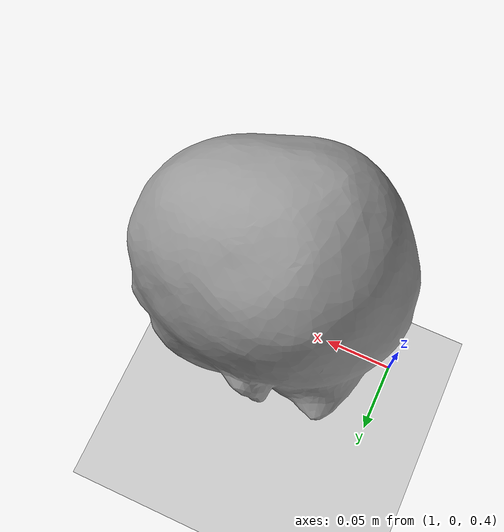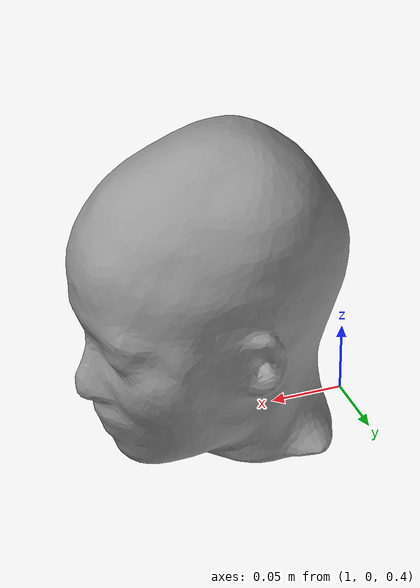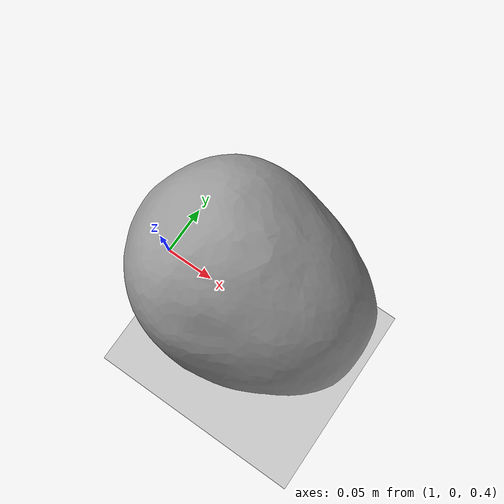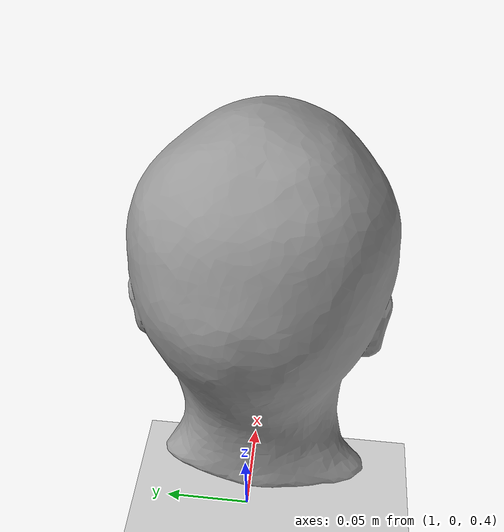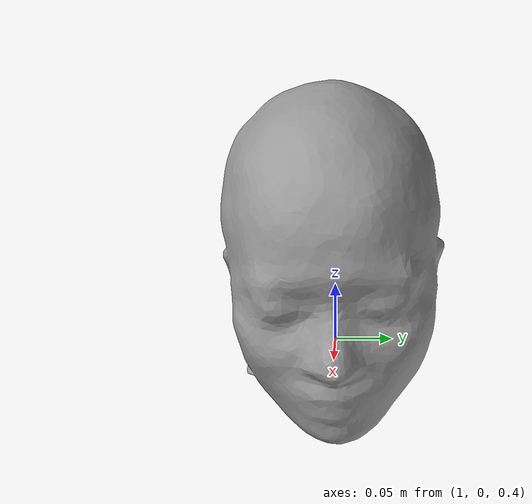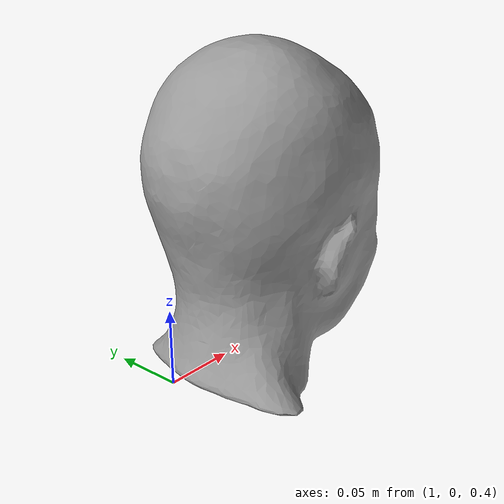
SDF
<sdf version='1.10'>
  <world name='my_world'>
    <physics name='1ms' type='simbody'>
      <max_step_size>0.001</max_step_size>
      <real_time_factor>1</real_time_factor>
      <real_time_update_rate>1000</real_time_update_rate>
    </physics>
    <plugin name='gz::sim::systems::Physics' filename='gz-sim-physics-system'/>
    <plugin name='gz::sim::systems::UserCommands' filename='gz-sim-user-commands-system'/>
    <plugin name='gz::sim::systems::SceneBroadcaster' filename='gz-sim-scene-broadcaster-system'/>
    <plugin name='gz::sim::systems::Contact' filename='gz-sim-contact-system'/>
    <plugin name="gz::sim::systems::UserCommands" filename="gz-sim-user-commands-system"/>

    <gravity>0 0 0</gravity>
    <magnetic_field>5.5644999999999998e-06 2.2875799999999999e-05 -4.2388400000000002e-05</magnetic_field>
    <atmosphere type='adiabatic'/>
    <scene>
      <ambient>0.400000006 0.400000006 0.400000006 1</ambient>
      <background>0.699999988 0.699999988 0.699999988 1</background>
      <shadows>true</shadows>
    </scene>
    <model name='ground_plane'>
      <static>true</static>
      <link name='link'>
        <collision name='collision'>
          <geometry>
            <plane>
              <normal>0 0 1</normal>
              <size>100 100</size>
            </plane>
          </geometry>
          <surface>
            <friction>
              <ode/>
            </friction>
            <bounce/>
            <contact/>
          </surface>
        </collision>
        <visual name='visual'>
          <geometry>
            <plane>
              <normal>0 0 1</normal>
              <size>100 100</size>
            </plane>
          </geometry>
          <material>
            <ambient>0.800000012 0.800000012 0.800000012 1</ambient>
            <diffuse>0.800000012 0.800000012 0.800000012 1</diffuse>
            <specular>0.800000012 0.800000012 0.800000012 1</specular>
          </material>
        </visual>
        <pose>0 0 0 0 0 0</pose>
        <inertial>
          <pose>0 0 0 0 0 0</pose>
          <mass>1</mass>
          <inertia>
            <ixx>1</ixx>
            <ixy>0</ixy>
            <ixz>0</ixz>
            <iyy>1</iyy>
            <iyz>0</iyz>
            <izz>1</izz>
          </inertia>
        </inertial>
        <enable_wind>false</enable_wind>
      </link>
      <pose>0 0 0 0 0 0</pose>
      <self_collide>false</self_collide>
    </model>

    <model name='skin'>
      <link name='link'>
        <visual name='visual'>
          <geometry>
            <mesh>
              <uri>skin.stl</uri>
              <scale>1 1 1</scale>
            </mesh>
          </geometry>
        <material>
	    <ambient>0.3 0.3 0.3 1</ambient>
	    <diffuse>0.6 0.6 0.6 1</diffuse>
	    <specular>0.2 0.2 0.2 1</specular>
	    <emissive>0.0 0.0 0.0 1</emissive>
  	</material>
        </visual>
        <inertial>
          <pose>0 0 0 0 0 0</pose>
          <mass>10</mass>
           <inertia>
            <ixx>1</ixx>
            <iyy>1</iyy>
            <izz>1</izz>
            <ixy>0</ixy>
            <ixz>0</ixz>
            <iyz>0</iyz>
          </inertia>
        </inertial>
        <kinematic>true</kinematic>
        <static>true</static>
      </link>
      <static>true</static>
      <pose>1.1 0 0.5 0 0 -1.57</pose>
    </model>

    <light name='sun' type='directional'>
      <pose>0 0 10 0 0 0</pose>
      <cast_shadows>true</cast_shadows>
      <intensity>1</intensity>
      <direction>-0.5 0.10000000000000001 -0.90000000000000002</direction>
      <diffuse>0.800000012 0.800000012 0.800000012 1</diffuse>
      <specular>0.200000003 0.200000003 0.200000003 1</specular>
      <attenuation>
        <range>1000</range>
        <linear>0.01</linear>
        <constant>0.90000000000000002</constant>
        <quadratic>0.001</quadratic>
      </attenuation>
      <spot>
        <inner_angle>0</inner_angle>
        <outer_angle>0</outer_angle>
        <falloff>0</falloff>
      </spot>
    </light>
  </world>
</sdf>
